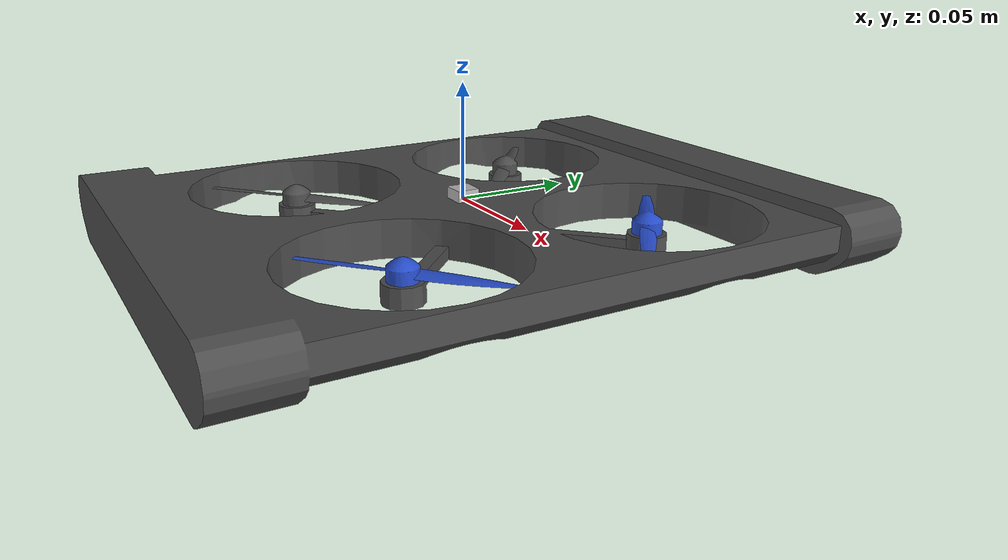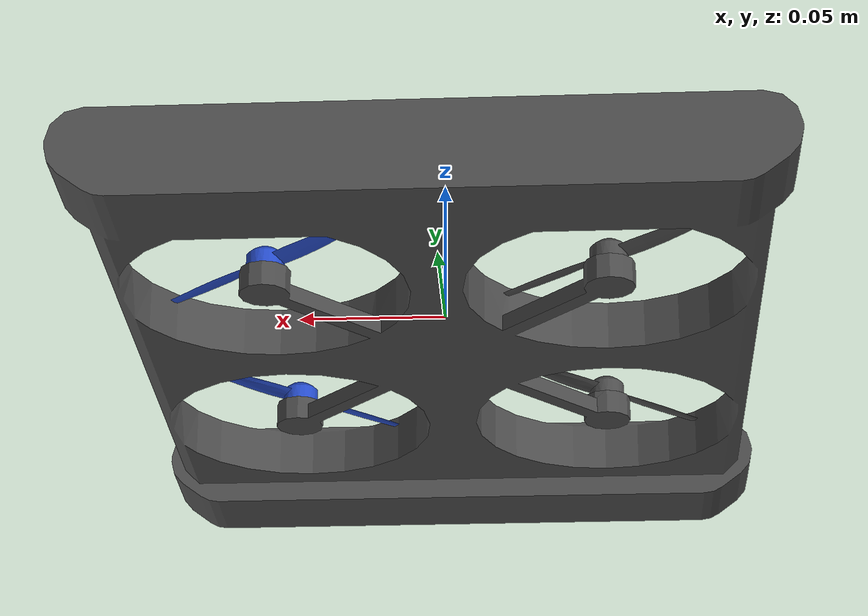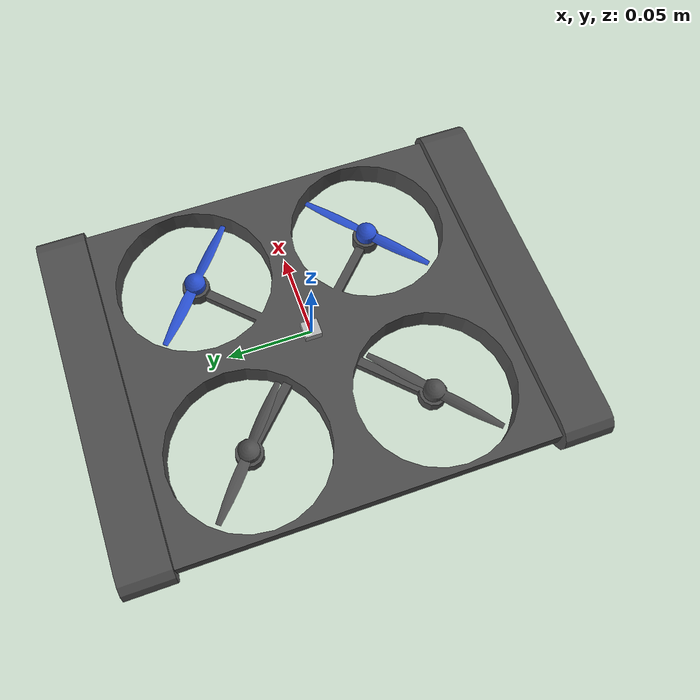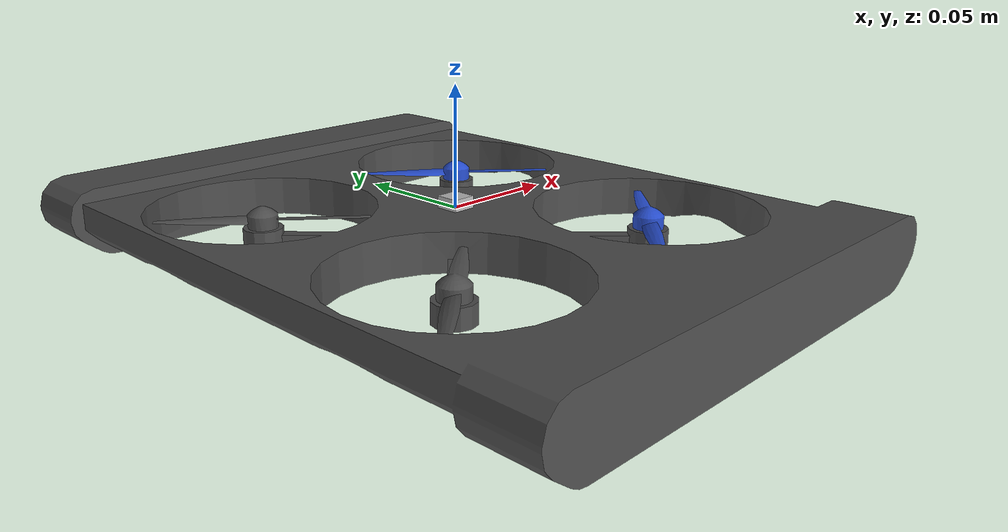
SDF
<sdf version='1.6'>
  <model name='ziji'>
    <link name='base_link'>
      <pose frame=''>0 0 0 0 -0 0</pose>
      <inertial>
        <pose frame=''>0 0 0 0 0 0</pose>
        <mass>1.5</mass>
        <inertia>
          <ixx>0.029125</ixx>
          <ixy>0</ixy>
          <ixz>0</ixz>
          <iyy>0.029125</iyy>
          <iyz>0</iyz>
          <izz>0.055225</izz>
        </inertia>
      </inertial>
      <collision name='base_link_collision'>
        <pose frame=''>0 0 0 0 -0 0</pose>
        <geometry>
          <mesh>
            <scale>1 1 1</scale>
            <uri>model://ziji/meshes/base_link.STL</uri>
          </mesh>
        </geometry>
	<surface>
        <contact>
          <ode>
            <min_depth>0.001</min_depth>
          </ode>
        </contact>
       </surface>
      </collision>
      <visual name='base_link_visual'>
        <pose frame=''>0 0 0 0 -0 0</pose>
        <geometry>
          <mesh>
            <scale>1 1 1</scale>
            <uri>model://ziji/meshes/base_link.STL</uri>
          </mesh>
        </geometry>
	<material>
          <script>
            <name>Gazebo/DarkGrey</name>
            <uri>file://media/materials/scripts/gazebo.material</uri>
          </script>
        </material>
      </visual>
    </link>

    <link name='/imu_link'>
      <pose>0 0 0 0 0 0</pose>
      <inertial>
        <pose>0 0 0 0 0 0</pose>
        <mass>0.015</mass>
        <inertia>
          <ixx>1e-05</ixx>
          <ixy>0</ixy>
          <ixz>0</ixz>
          <iyy>1e-05</iyy>
          <iyz>0</iyz>
          <izz>1e-05</izz>
        </inertia>
      </inertial>
    </link>
    <joint name='/imu_joint' type='revolute'>
      <child>/imu_link</child>
      <parent>base_link</parent>
      <axis>
        <xyz>1 0 0</xyz>
        <limit>
          <lower>0</lower>
          <upper>0</upper>
          <effort>0</effort>
          <velocity>0</velocity>
        </limit>
        <dynamics>
          <spring_reference>0</spring_reference>
          <spring_stiffness>0</spring_stiffness>
        </dynamics>
        <use_parent_model_frame>1</use_parent_model_frame>
      </axis>
    </joint>

    <link name='rotor_0'>
      <pose frame=''>0.055263 -0.055263 -0.00296 0 -0 0</pose>
      <inertial>
        <pose frame=''>-0 -0 -0.001885 0 -0 0</pose>
        <mass>0.005</mass>
        <inertia>
          <ixx>9.75e-07</ixx>
          <ixy>0</ixy>
          <ixz>0</ixz>
          <iyy>0.000273104</iyy>
          <iyz>0</iyz>
          <izz>0.000274004</izz>
        </inertia>
      </inertial>
      <collision name='rotor_0_collision'>
        <pose frame=''>0 0 0 0 -0 0</pose>
        <geometry>
          <mesh>
            <scale>1 1 1</scale>
            <uri>model://ziji/meshes/rotor_0_Link.STL</uri>
          </mesh>
        </geometry>
	<surface>
          <contact>
            <ode/>
          </contact>
          <friction>
            <ode/>
          </friction>
        </surface>
      </collision>
      <visual name='rotor_0_visual'>
        <pose frame=''>0 0 0 0 -0 0</pose>
        <geometry>
          <mesh>
            <scale>1 1 1</scale>
            <uri>model://ziji/meshes/rotor_0_Link.STL</uri>
          </mesh>
        </geometry>
	<material>
          <script>
            <name>Gazebo/Blue</name>
            <uri>file://media/materials/scripts/gazebo.material</uri>
          </script>
        </material>
      </visual>
    </link>
    <joint name='rotor_0_joint' type='revolute'>
      <child>rotor_0</child>
      <parent>base_link</parent>
      <axis>
        <xyz>0 0 1</xyz>
        <limit>
          <lower>-1e+16</lower>
          <upper>1e+16</upper>
        </limit>
        <dynamics>
          <spring_reference>0</spring_reference>
          <spring_stiffness>0</spring_stiffness>
        </dynamics>
        <use_parent_model_frame>1</use_parent_model_frame>
      </axis>
    </joint>
    <link name='rotor_1'>
      <pose frame=''>-0.055263 0.055263 -0.00296 0 -0 0</pose>
      <inertial>
        <pose frame=''>-0 0 -0.001885 0 -0 0</pose>
        <mass>0.005</mass>
        <inertia>
          <ixx>9.75e-07</ixx>
          <ixy>0</ixy>
          <ixz>0</ixz>
          <iyy>0.000273104</iyy>
          <iyz>0</iyz>
          <izz>0.000274004</izz>
        </inertia>
      </inertial>
      <collision name='rotor_1_collision'>
        <pose frame=''>0 0 0 0 -0 0</pose>
        <geometry>
          <mesh>
            <scale>1 1 1</scale>
            <uri>model://ziji/meshes/rotor_1_Link.STL</uri>
          </mesh>
        </geometry>
	<surface>
          <contact>
            <ode/>
          </contact>
          <friction>
            <ode/>
          </friction>
        </surface>
      </collision>
      <visual name='rotor_1_visual'>
        <pose frame=''>0 0 0 0 -0 0</pose>
        <geometry>
          <mesh>
            <scale>1 1 1</scale>
            <uri>model://ziji/meshes/rotor_1_Link.STL</uri>
          </mesh>
        </geometry>
	<material>
          <script>
            <name>Gazebo/DarkGrey</name>
            <uri>file://media/materials/scripts/gazebo.material</uri>
          </script>
        </material>
      </visual>
    </link>
    <joint name='rotor_1_joint' type='revolute'>
      <child>rotor_1</child>
      <parent>base_link</parent>
      <axis>
        <xyz>0 0 -1</xyz>
        <limit>
          <lower>-1e+16</lower>
          <upper>1e+16</upper>
        </limit>
        <dynamics>
          <spring_reference>0</spring_reference>
          <spring_stiffness>0</spring_stiffness>
        </dynamics>
        <use_parent_model_frame>1</use_parent_model_frame>
      </axis>
    </joint>
    <link name='rotor_2'>
      <pose frame=''>0.055263 0.055263 -0.00296 0 -0 0</pose>
      <inertial>
        <pose frame=''>-0 0 -0.001885 0 -0 0</pose>
       <mass>0.005</mass>
        <inertia>
          <ixx>9.75e-07</ixx>
          <ixy>0</ixy>
          <ixz>0</ixz>
          <iyy>0.000273104</iyy>
          <iyz>0</iyz>
          <izz>0.000274004</izz>
        </inertia>
      </inertial>
      <collision name='rotor_2_collision'>
        <pose frame=''>0 0 0 0 -0 0</pose>
        <geometry>
          <mesh>
            <scale>1 1 1</scale>
            <uri>model://ziji/meshes/rotor_1_Link.STL</uri>
          </mesh>
        </geometry>
	<surface>
          <contact>
            <ode/>
          </contact>
          <friction>
            <ode/>
          </friction>
        </surface>
      </collision>
      <visual name='rotor_2_visual'>
        <pose frame=''>0 0 0 0 -0 0</pose>
        <geometry>
          <mesh>
            <scale>1 1 1</scale>
            <uri>model://ziji/meshes/rotor_1_Link.STL</uri>
          </mesh>
        </geometry>
	<material>
          <script>
            <name>Gazebo/Blue</name>
            <uri>file://media/materials/scripts/gazebo.material</uri>
          </script>
        </material>
      </visual>
    </link>
    <joint name='rotor_2_joint' type='revolute'>
      <child>rotor_2</child>
      <parent>base_link</parent>
      <axis>
        <xyz>0 0 -1</xyz>
        <limit>
          <lower>-1e+16</lower>
          <upper>1e+16</upper>
        </limit>
        <dynamics>
          <spring_reference>0</spring_reference>
          <spring_stiffness>0</spring_stiffness>
        </dynamics>
        <use_parent_model_frame>1</use_parent_model_frame>
      </axis>
    </joint>
    <link name='rotor_3'>
      <pose frame=''>-0.055263 -0.055263 -0.00296 0 -0 0</pose>
      <inertial>
        <pose frame=''>0 0 -0.001885 0 -0 0</pose>
        <mass>0.005</mass>
        <inertia>
          <ixx>9.75e-07</ixx>
          <ixy>0</ixy>
          <ixz>0</ixz>
          <iyy>0.000273104</iyy>
          <iyz>0</iyz>
          <izz>0.000274004</izz>
        </inertia>
      </inertial>
      <collision name='rotor_3_collision'>
        <pose frame=''>0 0 0 0 -0 0</pose>
        <geometry>
          <mesh>
            <scale>1 1 1</scale>
            <uri>model://ziji/meshes/rotor_0_Link.STL</uri>
          </mesh>
        </geometry>
	<surface>
          <contact>
            <ode/>
          </contact>
          <friction>
            <ode/>
          </friction>
        </surface>
      </collision>
      <visual name='rotor_3_visual'>
        <pose frame=''>0 0 0 0 -0 0</pose>
        <geometry>
          <mesh>
            <scale>1 1 1</scale>
            <uri>model://ziji/meshes/rotor_0_Link.STL</uri>
          </mesh>
        </geometry>
	<material>
          <script>
            <name>Gazebo/DarkGrey</name>
            <uri>file://media/materials/scripts/gazebo.material</uri>
          </script>
        </material>
      </visual>
    </link>
    <joint name='rotor_3_joint' type='revolute'>
      <child>rotor_3</child>
      <parent>base_link</parent>
      <axis>
        <xyz>0 0 1</xyz>
        <limit>
          <lower>-1e+16</lower>
          <upper>1e+16</upper>
        </limit>
        <dynamics>
          <spring_reference>0</spring_reference>
          <spring_stiffness>0</spring_stiffness>
        </dynamics>
        <use_parent_model_frame>1</use_parent_model_frame>
      </axis>
    </joint>

    <link name='cam_link'>
    <pose>0 0 0 0 1.57 0</pose>
        <inertial>
          <mass>0.015</mass>
          <inertia>
            <ixx>4.15e-6</ixx>
          <ixy>0</ixy>
          <ixz>0</ixz>
          <iyy>2.407e-6</iyy>
          <iyz>0</iyz>
          <izz>2.407e-6</izz>
          </inertia>
        </inertial>
        <collision name='cam_collision'>
          <geometry>
            <box>
              <size>0.01 0.01 0.01</size>
            </box>
          </geometry>
          <max_contacts>10</max_contacts>
          <surface>
            <contact>
              <ode/>
            </contact>
            <bounce/>
            <friction>
              <ode/>
            </friction>
          </surface>
        </collision>
        <visual name='cam_visual'>
          <geometry>
            <box>
              <size>0.01 0.01 0.01</size>
            </box>
          </geometry>
        </visual>
        <sensor name='camera' type='camera'>
          <camera name='__default__'>
            <horizontal_fov>1.047</horizontal_fov>
            <image>
              <width>640</width>
              <height>480</height>
            </image>
            <clip>
              <near>0.1</near>
              <far>100</far>
            </clip>
            <lens>
              <type>custom</type>
              <custom_function>
                <c1>1.05</c1>
                <c2>4</c2>
                <f>1</f>
                <fun>tan</fun>
              </custom_function>
              <scale_to_hfov>1</scale_to_hfov>
              <cutoff_angle>3.1415</cutoff_angle>
              <env_texture_size>1080</env_texture_size>
            </lens>
          </camera>
          <always_on>1</always_on>
          <update_rate>30</update_rate>
          <visualize>1</visualize>
          <plugin name='camera_plugin' filename='libgazebo_ros_camera.so'>
              <robotNamespace></robotNamespace>
            <alwaysOn>true</alwaysOn>
            <imageTopicName>image_raw</imageTopicName>
            <cameraInfoTopicName>camera_info</cameraInfoTopicName>
            <updateRate>30.0</updateRate>
            <cameraName>usb_cam</cameraName>
            <frameName>/robot_camera_link</frameName>
            <CxPrime>320</CxPrime>
            <Cx>320</Cx>
            <Cy>240</Cy>
            <hackBaseline>0</hackBaseline>
            <focalLength>554.382713</focalLength>
            <distortionK1>0.0</distortionK1>
            <distortionK2>0.0</distortionK2>
            <distortionK3>0.0</distortionK3>
            <distortionT1>0.0</distortionT1>
            <distortionT2>0.0</distortionT2>
          </plugin>
          <!-- GStreamer camera plugin (needs a lot of CPU! Consider lowering the
             camera image size) -->
          <plugin name="GstCameraPlugin" filename="libgazebo_gst_camera_plugin.so">
            <robotNamespace></robotNamespace>
            <udpPort>5600</udpPort>
          </plugin>
        </sensor>
        <self_collide>0</self_collide>
        <kinematic>0</kinematic>
      </link>
    <joint name="cam_joint" type="fixed">
      <child>cam_link</child>
      <parent>base_link</parent>
      <axis>
        <xyz>0 0 1</xyz>
        <limit>
          <upper>0</upper>
          <lower>0</lower>
        </limit>
      </axis>
    </joint>
    <link name="sf10a_link">
    <pose>0 0 0 0 0 0</pose>
      <inertial>
        <mass>0.05</mass>
        <inertia>
          <ixx>2.0833333333333333e-07</ixx>
          <iyy>5.208333333333334e-07</iyy>
          <izz>5.208333333333334e-07</izz>
        </inertia>
      </inertial>

      <visual name="sf10a_visual">
        <geometry>
          <box>
            <size>0.01 0.005 0.005</size>
          </box>
        </geometry>
        <material>
          <script>
            <name>Gazebo/Blue</name>
            <uri>file://media/materials/scripts/gazebo.material</uri>
          </script>
        </material>
      </visual>

      <collision name="sf10a_collision">
        <geometry>
          <box>
            <size>0.01 0.005 0.005</size>
          </box>
        </geometry>
      </collision>

      <sensor name="sf10a" type="ray">
        <visualize>true</visualize>
        <always_on>1</always_on>
        <update_rate>20</update_rate>
        <pose>0 0 0 0 1.5707963259 0</pose>
        <ray>
          <scan>
            <horizontal>
              <samples>1</samples>
              <resolution>1</resolution>
              <min_angle>-0</min_angle>
              <max_angle>0</max_angle>
            </horizontal>
          </scan>
          <range>
            <min>0.06</min> <!-- do not change: use min_distance (below) for realistic behavior (smaller values cause issues) -->
            <max>35</max>   <!-- do not change: use min_distance (below) for realistic behavior (bigger values cause issues) -->
            <resolution>0.01</resolution>
          </range>
          <noise>
            <type>gaussian</type>
            <mean>0.0</mean>
            <stddev>0.01</stddev>
          </noise>
        </ray>

        <plugin name="LaserPlugin"
          filename="libgazebo_lidar_plugin.so">
          <robotNamespace></robotNamespace>
          <min_distance>0.1</min_distance>
          <max_distance>25.0</max_distance>
        </plugin>

      </sensor>
    </link>
    <joint name="sf10a_joint" type="fixed">
      <parent>base_link</parent>
      <child>sf10a_link</child>
    </joint>

    <plugin name='rosbag' filename='libgazebo_multirotor_base_plugin.so'>
      <robotNamespace/>
      <linkName>base_link</linkName>
      <rotorVelocitySlowdownSim>10</rotorVelocitySlowdownSim>
    </plugin>
    <plugin name='front_right_motor_model' filename='libgazebo_motor_model.so'>
      <robotNamespace/>
      <jointName>rotor_0_joint</jointName>
      <linkName>rotor_0</linkName>
      <turningDirection>ccw</turningDirection>
      <timeConstantUp>0.0125</timeConstantUp>
      <timeConstantDown>0.025</timeConstantDown>
      <maxRotVelocity>1100</maxRotVelocity>
      <motorConstant>5.84e-06</motorConstant>
      <momentConstant>0.06</momentConstant>
      <commandSubTopic>/gazebo/command/motor_speed</commandSubTopic>
      <motorNumber>0</motorNumber>
      <rotorDragCoefficient>0.000175</rotorDragCoefficient>
      <rollingMomentCoefficient>1e-06</rollingMomentCoefficient>
      <motorSpeedPubTopic>/motor_speed/0</motorSpeedPubTopic>
      <rotorVelocitySlowdownSim>10</rotorVelocitySlowdownSim>
    </plugin>
    <plugin name='back_left_motor_model' filename='libgazebo_motor_model.so'>
      <robotNamespace/>
      <jointName>rotor_1_joint</jointName>
      <linkName>rotor_1</linkName>
      <turningDirection>ccw</turningDirection>
      <timeConstantUp>0.0125</timeConstantUp>
      <timeConstantDown>0.025</timeConstantDown>
      <maxRotVelocity>1100</maxRotVelocity>
      <motorConstant>5.84e-06</motorConstant>
      <momentConstant>0.06</momentConstant>
      <commandSubTopic>/gazebo/command/motor_speed</commandSubTopic>
      <motorNumber>1</motorNumber>
      <rotorDragCoefficient>0.000175</rotorDragCoefficient>
      <rollingMomentCoefficient>1e-06</rollingMomentCoefficient>
      <motorSpeedPubTopic>/motor_speed/1</motorSpeedPubTopic>
      <rotorVelocitySlowdownSim>10</rotorVelocitySlowdownSim>
    </plugin>
    <plugin name='front_left_motor_model' filename='libgazebo_motor_model.so'>
      <robotNamespace/>
      <jointName>rotor_2_joint</jointName>
      <linkName>rotor_2</linkName>
      <turningDirection>cw</turningDirection>
      <timeConstantUp>0.0125</timeConstantUp>
      <timeConstantDown>0.025</timeConstantDown>
      <maxRotVelocity>1100</maxRotVelocity>
      <motorConstant>5.84e-06</motorConstant>
      <momentConstant>0.06</momentConstant>
      <commandSubTopic>/gazebo/command/motor_speed</commandSubTopic>
      <motorNumber>2</motorNumber>
      <rotorDragCoefficient>0.000175</rotorDragCoefficient>
      <rollingMomentCoefficient>1e-06</rollingMomentCoefficient>
      <motorSpeedPubTopic>/motor_speed/2</motorSpeedPubTopic>
      <rotorVelocitySlowdownSim>10</rotorVelocitySlowdownSim>
    </plugin>
    <plugin name='back_right_motor_model' filename='libgazebo_motor_model.so'>
      <robotNamespace/>
      <jointName>rotor_3_joint</jointName>
      <linkName>rotor_3</linkName>
      <turningDirection>cw</turningDirection>
      <timeConstantUp>0.0125</timeConstantUp>
      <timeConstantDown>0.025</timeConstantDown>
      <maxRotVelocity>1100</maxRotVelocity>
      <motorConstant>5.84e-06</motorConstant>
      <momentConstant>0.06</momentConstant>
      <commandSubTopic>/gazebo/command/motor_speed</commandSubTopic>
      <motorNumber>3</motorNumber>
      <rotorDragCoefficient>0.000175</rotorDragCoefficient>
      <rollingMomentCoefficient>1e-06</rollingMomentCoefficient>
      <motorSpeedPubTopic>/motor_speed/3</motorSpeedPubTopic>
      <rotorVelocitySlowdownSim>10</rotorVelocitySlowdownSim>
    </plugin>

    <plugin name='gps_plugin' filename='libgazebo_gps_plugin.so'>
      <robotNamespace/>
      <gpsNoise>1</gpsNoise>
    </plugin>
    <plugin name='magnetometer_plugin' filename='libgazebo_magnetometer_plugin.so'>
      <robotNamespace/>
      <pubRate>100</pubRate>
      <noiseDensity>0.0004</noiseDensity>
      <randomWalk>6.4e-06</randomWalk>
      <biasCorrelationTime>600</biasCorrelationTime>
      <magTopic>/mag</magTopic>
    </plugin>
    <plugin name='barometer_plugin' filename='libgazebo_barometer_plugin.so'>
      <robotNamespace/>
      <pubRate>50</pubRate>
      <baroTopic>/baro</baroTopic>
    </plugin>
    <plugin name='mavlink_interface' filename='libgazebo_mavlink_interface.so'>
      <robotNamespace/>
      <imuSubTopic>/imu</imuSubTopic>
      <gpsSubTopic>/gps</gpsSubTopic>
      <magSubTopic>/mag</magSubTopic>
      <baroSubTopic>/baro</baroSubTopic>
      <mavlink_addr>INADDR_ANY</mavlink_addr>
      <mavlink_udp_port>14560</mavlink_udp_port>
      <mavlink_tcp_port>4560</mavlink_tcp_port>
      <serialEnabled>0</serialEnabled>
      <serialDevice>/dev/ttyACM0</serialDevice>
      <baudRate>921600</baudRate>
      <qgc_addr>INADDR_ANY</qgc_addr>
      <qgc_udp_port>14550</qgc_udp_port>
      <sdk_addr>INADDR_ANY</sdk_addr>
      <sdk_udp_port>14540</sdk_udp_port>
      <hil_mode>0</hil_mode>
      <hil_state_level>0</hil_state_level>
      <vehicle_is_tailsitter>0</vehicle_is_tailsitter>
      <send_vision_estimation>1</send_vision_estimation>
      <send_odometry>0</send_odometry>
      <enable_lockstep>1</enable_lockstep>
      <use_tcp>1</use_tcp>
      <motorSpeedCommandPubTopic>/gazebo/command/motor_speed</motorSpeedCommandPubTopic>
      <control_channels>
        <channel name='rotor0'>
          <input_index>0</input_index>
          <input_offset>0</input_offset>
          <input_scaling>1000</input_scaling>
          <zero_position_disarmed>0</zero_position_disarmed>
          <zero_position_armed>100</zero_position_armed>
          <joint_control_type>velocity</joint_control_type>
        </channel>
        <channel name='rotor1'>
          <input_index>1</input_index>
          <input_offset>0</input_offset>
          <input_scaling>1000</input_scaling>
          <zero_position_disarmed>0</zero_position_disarmed>
          <zero_position_armed>100</zero_position_armed>
          <joint_control_type>velocity</joint_control_type>
        </channel>
        <channel name='rotor2'>
          <input_index>2</input_index>
          <input_offset>0</input_offset>
          <input_scaling>1000</input_scaling>
          <zero_position_disarmed>0</zero_position_disarmed>
          <zero_position_armed>100</zero_position_armed>
          <joint_control_type>velocity</joint_control_type>
        </channel>
        <channel name='rotor3'>
          <input_index>3</input_index>
          <input_offset>0</input_offset>
          <input_scaling>1000</input_scaling>
          <zero_position_disarmed>0</zero_position_disarmed>
          <zero_position_armed>100</zero_position_armed>
          <joint_control_type>velocity</joint_control_type>
        </channel>
      </control_channels>
    </plugin>

  <plugin name="p3d_base_controller" filename="libgazebo_ros_p3d.so">
    <alwaysOn>true</alwaysOn>
    <updateRate>50.0</updateRate>
    <bodyName>base_link</bodyName>
    <topicName>ground_truth/state</topicName>
    <gaussianNoise>0.01</gaussianNoise>
    <frameName>world</frameName>
    <xyzOffsets>0 0 0</xyzOffsets>
    <rpyOffsets>0 0 0</rpyOffsets>
  </plugin>

    <static>0</static>
    <plugin name='rotors_gazebo_imu_plugin' filename='libgazebo_imu_plugin.so'>
      <robotNamespace/>
      <linkName>/imu_link</linkName>
      <imuTopic>/imu</imuTopic>
      <gyroscopeNoiseDensity>0.00018665</gyroscopeNoiseDensity>
      <gyroscopeRandomWalk>3.8785e-05</gyroscopeRandomWalk>
      <gyroscopeBiasCorrelationTime>1000.0</gyroscopeBiasCorrelationTime>
      <gyroscopeTurnOnBiasSigma>0.0087</gyroscopeTurnOnBiasSigma>
      <accelerometerNoiseDensity>0.00186</accelerometerNoiseDensity>
      <accelerometerRandomWalk>0.006</accelerometerRandomWalk>
      <accelerometerBiasCorrelationTime>300.0</accelerometerBiasCorrelationTime>
      <accelerometerTurnOnBiasSigma>0.196</accelerometerTurnOnBiasSigma>
    </plugin>
  </model>
</sdf>
